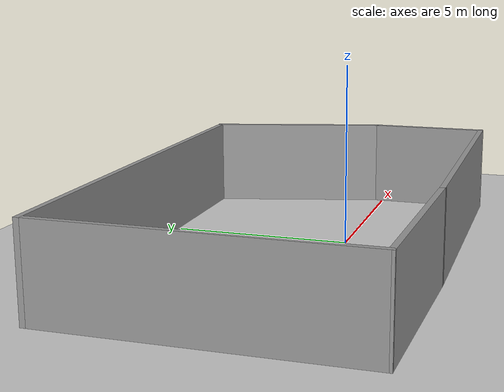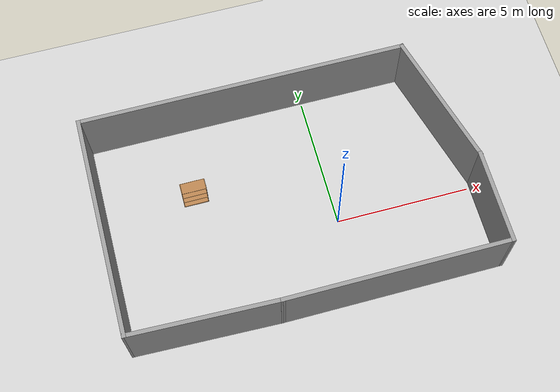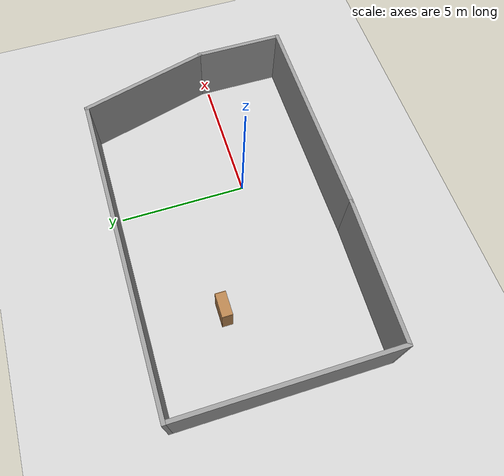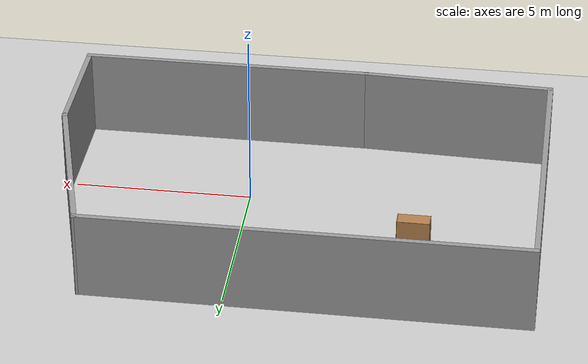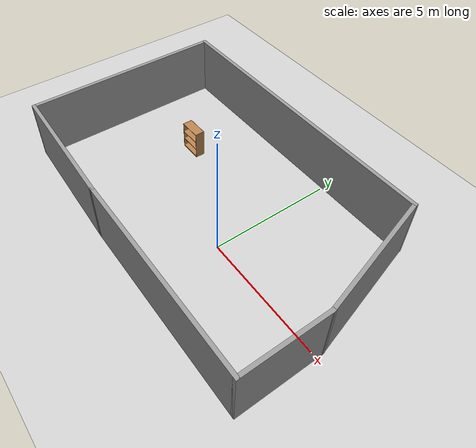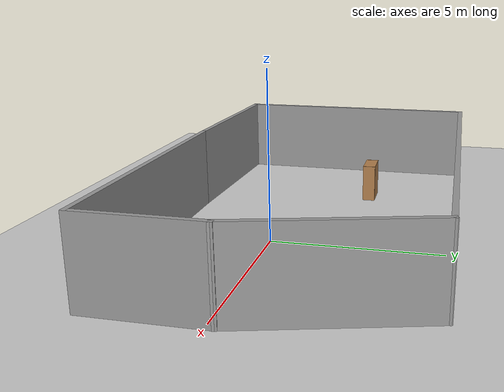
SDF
<sdf version="1.6">
 <world name="default">
  <light name="sun" type="directional">
   <pose>0 0 10 0 -0 0</pose>
   <diffuse>0.8 0.8 0.8 1</diffuse>
   <specular>0.2 0.2 0.2 1</specular>
   <attenuation>
    <range>1000</range>
    <constant>0.9</constant>
    <linear>0.01</linear>
    <quadratic>0.001</quadratic>
   </attenuation>
   <direction>-0.5 0.1 -0.9</direction>
  </light>
  <model name="ground_plane">
   <static>1</static>
   <link name="link">
    <collision name="collision">
     <geometry><plane><normal>0 0 1</normal><size>100 100</size></plane></geometry>
     <surface>
      <contact><collide_bitmask>65535</collide_bitmask></contact>
      <friction><ode><mu>100</mu><mu2>50</mu2></ode></friction>
     </surface>
    </collision>
    <visual name="visual">
     <cast_shadows>0</cast_shadows>
     <geometry><plane><normal>0 0 1</normal><size>100 100</size></plane></geometry>
     <material>
      <script><uri>file://media/materials/scripts/gazebo.material</uri><name>Gazebo/Grey</name></script>
     </material>
    </visual>
   </link>
  </model>
  <gravity>0 0 -9.8</gravity>
  <magnetic_field>6e-06 2.3e-05 -4.2e-05</magnetic_field>
  <atmosphere type="adiabatic"/>
  <physics name="default_physics" default="0" type="ode">
   <max_step_size>0.001</max_step_size>
   <real_time_factor>1</real_time_factor>
   <real_time_update_rate>1000</real_time_update_rate>
  </physics>
  <scene><ambient>0.4 0.4 0.4 1</ambient><background>0.7 0.7 0.7 1</background><shadows>1</shadows></scene>
  <audio><device>default</device></audio>
  <spherical_coordinates>
   <surface_model>EARTH_WGS84</surface_model>
   <latitude_deg>0</latitude_deg>
   <longitude_deg>0</longitude_deg>
   <elevation>0</elevation>
   <heading_deg>0</heading_deg>
  </spherical_coordinates>
  <model name="trymod">
   <pose>-1.52024 1.045 0 0 -0 0</pose>
   <link name="Wall_0">
    <collision name="Wall_0_Collision">
     <geometry><box><size>8.25 0.15 2.5</size></box></geometry>
     <pose>0 0 1.25 0 -0 0</pose>
    </collision>
    <visual name="Wall_0_Visual">
     <pose>0 0 1.25 0 -0 0</pose>
     <geometry><box><size>8.25 0.15 2.5</size></box></geometry>
     <material>
      <script><uri>file://media/materials/scripts/gazebo.material</uri><name>Gazebo/Grey</name></script>
      <ambient>1 1 1 1</ambient>
     </material>
     <meta><layer>0</layer></meta>
    </visual>
    <pose>2.65278 -4.14532 0 0 -0 0</pose>
   </link>
   <link name="Wall_1">
    <collision name="Wall_1_Collision">
     <geometry><box><size>3.5 0.15 2.5</size></box></geometry>
     <pose>0 0 1.25 0 -0 0</pose>
    </collision>
    <visual name="Wall_1_Visual">
     <pose>0 0 1.25 0 -0 0</pose>
     <geometry><box><size>3.5 0.15 2.5</size></box></geometry>
     <material>
      <script><uri>file://media/materials/scripts/gazebo.material</uri><name>Gazebo/Grey</name></script>
      <ambient>1 1 1 1</ambient>
     </material>
     <meta><layer>0</layer></meta>
    </visual>
    <pose>6.70278 -2.47032 0 0 -0 1.5708</pose>
   </link>
   <link name="Wall_2">
    <collision name="Wall_2_Collision">
     <geometry><box><size>5.25 0.15 2.5</size></box></geometry>
     <pose>0 0 1.25 0 -0 0</pose>
    </collision>
    <visual name="Wall_2_Visual">
     <pose>0 0 1.25 0 -0 0</pose>
     <geometry><box><size>5.25 0.15 2.5</size></box></geometry>
     <material>
      <script><uri>file://media/materials/scripts/gazebo.material</uri><name>Gazebo/Grey</name></script>
      <ambient>1 1 1 1</ambient>
     </material>
     <meta><layer>0</layer></meta>
    </visual>
    <pose>6.04279 1.66779 0 0 -0 1.8326</pose>
   </link>
   <link name="Wall_3">
    <collision name="Wall_3_Collision">
     <geometry><box><size>12.25 0.15 2.5</size></box></geometry>
     <pose>0 0 1.25 0 -0 0</pose>
    </collision>
    <visual name="Wall_3_Visual">
     <pose>0 0 1.25 0 -0 0</pose>
     <geometry><box><size>12.25 0.15 2.5</size></box></geometry>
     <material>
      <script><uri>file://media/materials/scripts/gazebo.material</uri><name>Gazebo/Grey</name></script>
      <ambient>1 1 1 1</ambient>
     </material>
     <meta><layer>0</layer></meta>
    </visual>
    <pose>-0.667195 4.1309 0 0 -0 3.14159</pose>
   </link>
   <link name="Wall_4">
    <collision name="Wall_4_Collision">
     <geometry><box><size>8.25 0.15 2.5</size></box></geometry>
     <pose>0 0 1.25 0 -0 0</pose>
    </collision>
    <visual name="Wall_4_Visual">
     <pose>0 0 1.25 0 -0 0</pose>
     <geometry><box><size>8.25 0.15 2.5</size></box></geometry>
     <material>
      <script><uri>file://media/materials/scripts/gazebo.material</uri><name>Gazebo/Grey</name></script>
      <ambient>1 1 1 1</ambient>
     </material>
     <meta><layer>0</layer></meta>
    </visual>
    <pose>-6.7172 0.080904 0 0 -0 -1.5708</pose>
   </link>
   <link name="Wall_5">
    <collision name="Wall_5_Collision">
     <geometry><box><size>5.4729 0.15 2.5</size></box></geometry>
     <pose>0 0 1.25 0 -0 0</pose>
    </collision>
    <visual name="Wall_5_Visual">
     <pose>0 0 1.25 0 -0 0</pose>
     <geometry><box><size>5.4729 0.15 2.5</size></box></geometry>
     <material>
      <script><uri>file://media/materials/scripts/gazebo.material</uri><name>Gazebo/Grey</name></script>
      <ambient>1 1 1 1</ambient>
     </material>
     <meta><layer>0</layer></meta>
    </visual>
    <pose>-4.05721 -4.05721 0 0 -0 -0.033112</pose>
   </link>
   <static>1</static>
  </model>
  <model name="bookshelf">
   <static>1</static>
   <link name="link">
    <inertial><mass>1</mass></inertial>
    <collision name="back">
     <pose>0 0.005 0.6 0 -0 0</pose>
     <geometry><box><size>0.9 0.01 1.2</size></box></geometry>
    </collision>
    <visual name="visual1">
     <pose>0 0.005 0.6 0 -0 0</pose>
     <geometry><box><size>0.9 0.01 1.2</size></box></geometry>
     <material>
      <script><uri>file://media/materials/scripts/gazebo.material</uri><name>Gazebo/Wood</name></script>
     </material>
    </visual>
    <collision name="left_side">
     <pose>0.45 -0.195 0.6 0 -0 0</pose>
     <geometry><box><size>0.02 0.4 1.2</size></box></geometry>
    </collision>
    <visual name="visual2">
     <pose>0.45 -0.195 0.6 0 -0 0</pose>
     <geometry><box><size>0.02 0.4 1.2</size></box></geometry>
     <material>
      <script><uri>file://media/materials/scripts/gazebo.material</uri><name>Gazebo/Wood</name></script>
     </material>
    </visual>
    <collision name="right_side">
     <pose>-0.45 -0.195 0.6 0 -0 0</pose>
     <geometry><box><size>0.02 0.4 1.2</size></box></geometry>
    </collision>
    <visual name="visual3">
     <pose>-0.45 -0.195 0.6 0 -0 0</pose>
     <geometry><box><size>0.02 0.4 1.2</size></box></geometry>
     <material>
      <script><uri>file://media/materials/scripts/gazebo.material</uri><name>Gazebo/Wood</name></script>
     </material>
    </visual>
    <collision name="bottom">
     <pose>0 -0.195 0.03 0 -0 0</pose>
     <geometry><box><size>0.88 0.4 0.06</size></box></geometry>
    </collision>
    <visual name="visual4">
     <pose>0 -0.195 0.03 0 -0 0</pose>
     <geometry><box><size>0.88 0.4 0.06</size></box></geometry>
     <material>
      <script><uri>file://media/materials/scripts/gazebo.material</uri><name>Gazebo/Wood</name></script>
     </material>
    </visual>
    <collision name="top">
     <pose>0 -0.195 1.19 0 -0 0</pose>
     <geometry><box><size>0.88 0.4 0.02</size></box></geometry>
    </collision>
    <visual name="visual5">
     <pose>0 -0.195 1.19 0 -0 0</pose>
     <geometry><box><size>0.88 0.4 0.02</size></box></geometry>
     <material>
      <script><uri>file://media/materials/scripts/gazebo.material</uri><name>Gazebo/Wood</name></script>
     </material>
    </visual>
    <collision name="low_shelf">
     <pose>0 -0.195 0.43 0 -0 0</pose>
     <geometry><box><size>0.88 0.4 0.02</size></box></geometry>
    </collision>
    <visual name="visual6">
     <pose>0 -0.195 0.43 0 -0 0</pose>
     <geometry><box><size>0.88 0.4 0.02</size></box></geometry>
     <material>
      <script><uri>file://media/materials/scripts/gazebo.material</uri><name>Gazebo/Wood</name></script>
     </material>
    </visual>
    <collision name="high_shelf">
     <pose>0 -0.195 0.8 0 -0 0</pose>
     <geometry><box><size>0.88 0.4 0.02</size></box></geometry>
    </collision>
    <visual name="visual7">
     <pose>0 -0.195 0.8 0 -0 0</pose>
     <geometry><box><size>0.88 0.4 0.02</size></box></geometry>
     <material>
      <script><uri>file://media/materials/scripts/gazebo.material</uri><name>Gazebo/Wood</name></script>
     </material>
    </visual>
   </link>
   <pose>-4.83697 2.44448 0 0 -0 0</pose>
  </model>
 </world>
</sdf>
